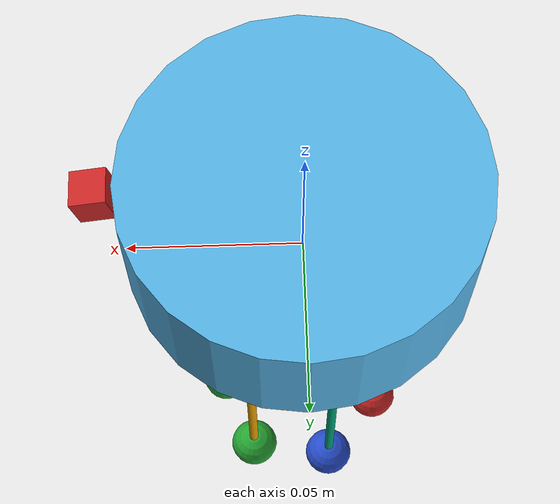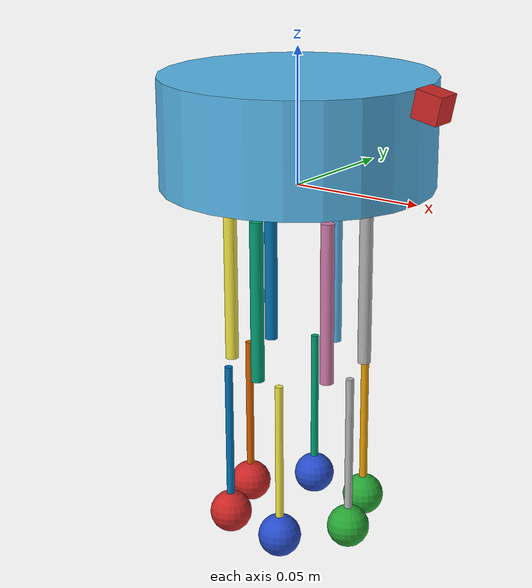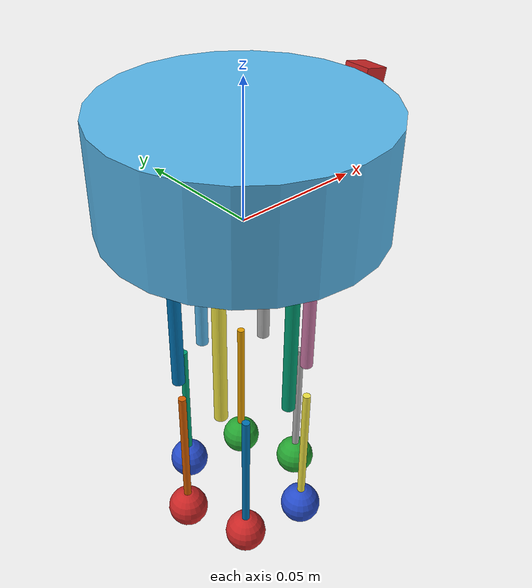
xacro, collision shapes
<?xml version="1.0"?>
<robot xmlns:xacro="http://www.ros.org/wiki/xacro" name="gurdy">

    <!-- Properties -->
    <xacro:property name="foot_kp" value="1000.0"/>
    <xacro:property name="foot_kd" value="1000.0"/>
    <xacro:property name="foot_mu1" value="10.0"/>
    <xacro:property name="foot_mu2" value="10.0"/>
    <xacro:property name="foot_radius" value="0.008"/>

    <xacro:property name="joint_effort" value="3.0"/>
    <!-- rad/s. 0.005 rad/s would need ~5 min for a 1.5 rad stroke. -->
    <xacro:property name="joint_velocity" value="5.0"/>
    <xacro:property name="joint_damping" value="0.2"/>
    <xacro:property name="joint_friction" value="0.01"/>

    <gazebo>
    <plugin name="ground_truth" filename="libgazebo_ros_p3d.so">
        <bodyName>base_link</bodyName>
        <topicName>/gurdy/odom</topicName>
        <frameName>world</frameName>
        <updateRate>10.0</updateRate>
    </plugin>
</gazebo>

    <!-- Head XACRO -->
    <xacro:macro name="gurdy_head" params="">
        <link name="base_link">
            <collision>
                <origin xyz="0 0 0" rpy="0 0 0"/>
                <geometry>
                    <box size="0.01 0.01 0.01"/>
                </geometry>
            </collision>
            <visual>
                <origin xyz="0 0 0.01" rpy="0 0 0"/>
                <geometry>
                    <box size="0.01 0.01 0.01"/>
                </geometry>
            </visual>
        </link>

        <link name="head_link">
            <inertial>
                <origin xyz="0 0 0.02" rpy="0 0 0"/>
                <mass value="0.3" />
                <inertia ixx="2.275e-04" ixy="0.0" ixz="0.0" iyy="2.275e-04" iyz="0.0" izz="3.75e-04"/>
            </inertial>
            <collision>
                <origin xyz="0 0 0.02" rpy="0 0 0"/>
                <geometry>
                    <cylinder radius="0.05" length="0.04"/>
                </geometry>
            </collision>
            <visual>
                <origin rpy="0.0 0 0" xyz="0 0 0"/>
                <geometry>
                    <mesh filename="package://my_gurdy_description/models/gurdy/meshes/gurdy_head_v2.dae"/>
                </geometry>
            </visual>
        </link>

        <gazebo reference="head_link">
            <mu1>10.0</mu1>
            <mu2>10.0</mu2>
        </gazebo>

        <joint name="fixed" type="fixed">
            <parent link="base_link"/>
            <child link="head_link"/>
        </joint>
    </xacro:macro>

    <!-- Camera XACRO -->
<xacro:macro name="gurdy_camera" params="">
    <link name="camera_link">
        <inertial>
            <origin xyz="0 0 0" rpy="0 0 0"/>
            <mass value="0.001" />
            <!-- Inflated for solver stability; see the inertia note at the top. -->
            <inertia ixx="1e-06" ixy="0.0" ixz="0.0" iyy="1e-06" iyz="0.0" izz="1e-06"/>
        </inertial>
        <collision>
            <origin xyz="0 0 0" rpy="0 0 0"/>
            <geometry>
                <box size="0.01 0.01 0.01"/>
            </geometry>
        </collision>
        <visual>
            <origin rpy="0.0 0 0" xyz="0 0 0"/>
            <geometry>
                <box size="0.01 0.01 0.01"/>
            </geometry>
        </visual>
    </link>

    <gazebo reference="camera_link">
        <material>Gazebo/Red</material>
    </gazebo>

    <xacro:property name="camera_tilt_rad" value="0.2094"/>
    <joint name="head_camera_joint" type="fixed">
        <parent link="head_link"/>
        <child link="camera_link"/>
        <origin xyz="0.055 0 0.035" rpy="0 ${camera_tilt_rad} 0"/>
    </joint>

    <gazebo reference="camera_link">
        <sensor type="camera" name="camera1">
            <update_rate>30.0</update_rate>
            <camera name="head">
                <horizontal_fov>1.3962634</horizontal_fov>
                <image>
                    <width>800</width>
                    <height>600</height>
                    <format>R8G8B8</format>
                </image>
                <clip>
                    <near>0.02</near>
                    <far>300</far>
                </clip>
                <noise>
                    <type>gaussian</type>
                    <mean>0.0</mean>
                    <stddev>0.007</stddev>
                </noise>
            </camera>
            <plugin name="camera_controller" filename="libgazebo_ros_camera.so">
                <alwaysOn>true</alwaysOn>
                <updateRate>0.0</updateRate>
                <cameraName>gurdy/camera</cameraName>
                <imageTopicName>image_raw</imageTopicName>
                <cameraInfoTopicName>camera_info</cameraInfoTopicName>
                <frameName>camera_link</frameName>
                <hackBaseline>0.07</hackBaseline>
                <distortionK1>0.0</distortionK1>
                <distortionK2>0.0</distortionK2>
                <distortionK3>0.0</distortionK3>
                <distortionT1>0.0</distortionT1>
                <distortionT2>0.0</distortionT2>
            </plugin>
        </sensor>
    </gazebo>
</xacro:macro>

<!-- Add bumper sensor to the head -->
<gazebo reference="head">
  <sensor name="head_bumper" type="contact">
    <always_on>true</always_on>
    <update_rate>10.0</update_rate>
    <contact>
      <collision>head_collision</collision>
    </contact>
    <plugin name="gazebo_ros_bumper_controller" filename="libgazebo_ros_bumper.so">
      <alwaysOn>true</alwaysOn>
      <updateRate>10.0</updateRate>
      <bumperTopicName>head_bumper</bumperTopicName>
      <frameName>head</frameName>
    </plugin>
  </sensor>
</gazebo>

    <!-- LEG -->
    <!-- MACROS -->
    <xacro:macro name="upperleg_link" params="number">
        <link name="upperleg_M${number}_link">
            <inertial>
                <origin xyz="0 0 0.03" rpy="0 0 0"/>
                <mass value="0.03" />
                <!-- Inflated for solver stability; see the inertia note at the top. -->
                <inertia ixx="1e-05" ixy="0.0" ixz="0.0" iyy="1e-05" iyz="0.0" izz="1e-06"/>
            </inertial>
            <collision>
                <origin xyz="0 0 0.03" rpy="0 0 0"/>
                <geometry>
                    <cylinder length="0.06" radius="0.0025"/>
                </geometry>
            </collision>
            <visual>
                <origin rpy="0.0 0 0" xyz="0 0 0"/>
                <geometry>
                    <mesh filename="package://my_gurdy_description/models/gurdy/meshes/gurdy_higherleg_v2.dae"/>
                </geometry>
            </visual>
        </link>
    </xacro:macro>

    <xacro:macro name="lowerleg_link" params="number">
        <link name="lowerleg_M${number}_link">
            <inertial>
                <origin xyz="0 0 0.03" rpy="0 0 0"/>
                <mass value="0.03" />
                <!-- Inflated for solver stability; see the inertia note at the top. -->
                <inertia ixx="1e-05" ixy="0.0" ixz="0.0" iyy="1e-05" iyz="0.0" izz="1e-06"/>
            </inertial>
            <collision>
                <origin xyz="0 0 0.03" rpy="0 0 0"/>
                <geometry>
                    <cylinder length="0.06" radius="0.0015"/>
                </geometry>
            </collision>
            <visual>
                <origin rpy="0.0 0 0" xyz="0 0 0"/>
                <geometry>
                    <mesh filename="package://my_gurdy_description/models/gurdy/meshes/gurdy_lowerleg_v2.dae"/>
                </geometry>
            </visual>
        </link>
        <joint name="upperlegM${number}_lowerlegM${number}_joint" type="revolute">
            <parent link="upperleg_M${number}_link"/>
            <child link="lowerleg_M${number}_link"/>
            <origin xyz="0 0.0095 0.06" rpy="0 0 3.14159"/>
            <limit lower="-2.9" upper="0.0" effort="${joint_effort}" velocity="${joint_velocity}"/>
            <dynamics damping="${joint_damping}" friction="${joint_friction}"/>
            <axis xyz="0 1 0"/>
        </joint>
        <!-- Implicit damping, so joint_damping stays stable; see its note. -->
        <gazebo reference="upperlegM${number}_lowerlegM${number}_joint">
            <implicitSpringDamper>true</implicitSpringDamper>
        </gazebo>
    </xacro:macro>

    <xacro:macro name="foot_link" params="number colour">
        <link name="footM${number}_link">
            <inertial>
                <origin xyz="0 0 0" rpy="0 0 0"/>
                <mass value="0.01" />
                <!-- Inflated for solver stability; see the inertia note at the top. -->
                <inertia ixx="1e-06" ixy="0.0" ixz="0.0" iyy="1e-06" iyz="0.0" izz="1e-06"/>
            </inertial>
            <collision>
                <origin xyz="0 0 0" rpy="0 0 0"/>
                <geometry>
                    <sphere radius="${foot_radius}"/>
                </geometry>
            </collision>
            <visual>
                <origin rpy="0.0 0 0" xyz="0 0 0"/>
                <geometry>
                    <sphere radius="${foot_radius}"/>
                </geometry>
            </visual>
        </link>
        <gazebo reference="footM${number}_link">
            <kp>${foot_kp}</kp>
            <kd>${foot_kd}</kd>
            <mu1>${foot_mu1}</mu1>
            <mu2>${foot_mu2}</mu2>
            <material>Gazebo/${colour}</material>
        </gazebo>
        <joint name="basefoot_peg_M${number}_basefoot_peg_M${number}_joint_joint" type="fixed">
            <parent link="lowerleg_M${number}_link"/>
            <child link="footM${number}_link"/>
            <origin xyz="0 0 0.06" rpy="0 0 0"/>
        </joint>
    </xacro:macro>

    <xacro:macro name="upper_transmission" params="number">
        <transmission name="tran_upper_M${number}">
            <type>transmission_interface/SimpleTransmission</type>
            <joint name="head_upperlegM${number}_joint">
                <hardwareInterface>EffortJointInterface</hardwareInterface>
            </joint>
            <actuator name="motor_upper_M${number}">
                <hardwareInterface>EffortJointInterface</hardwareInterface>
                <mechanicalReduction>1</mechanicalReduction>
            </actuator>
        </transmission>
    </xacro:macro>

    <xacro:macro name="lower_transmission" params="number">
        <transmission name="tran_lower_M${number}">
            <type>transmission_interface/SimpleTransmission</type>
            <joint name="upperlegM${number}_lowerlegM${number}_joint">
                <hardwareInterface>EffortJointInterface</hardwareInterface>
            </joint>
            <actuator name="motor_lower_M${number}">
                <hardwareInterface>EffortJointInterface</hardwareInterface>
                <mechanicalReduction>1</mechanicalReduction>
            </actuator>
        </transmission>
    </xacro:macro>

    <xacro:macro name="gurdy_leg" params="headlink_name number colour *origin">
        <xacro:upperleg_link number="${number}"/>
        <xacro:upper_transmission number="${number}"/>

        <joint name="head_upperlegM${number}_joint" type="revolute">
            <parent link="${headlink_name}"/>
            <child link="upperleg_M${number}_link"/>
            <xacro:insert_block name="origin" />
            <limit lower="-1.55" upper="0.0" effort="${joint_effort}" velocity="${joint_velocity}"/>
            <dynamics damping="${joint_damping}" friction="${joint_friction}"/>
            <axis xyz="0 1 0"/>
        </joint>
        <!-- Implicit damping, so joint_damping stays stable; see its note. -->
        <gazebo reference="head_upperlegM${number}_joint">
            <implicitSpringDamper>true</implicitSpringDamper>
        </gazebo>

        <xacro:lowerleg_link number="${number}"/>
        <xacro:lower_transmission number="${number}"/>

        <xacro:foot_link number="${number}" colour="${colour}"/>
    </xacro:macro>

    <xacro:macro name="gurdy_control" params="namespace">
        <gazebo>
            <plugin name="gazebo_ros_control" filename="libgazebo_ros_control.so">
                <robotNamespace>/${namespace}</robotNamespace>
            </plugin>
        </gazebo>

        <gazebo>
            <plugin name="gazebo_ros_imu_controller" filename="libgazebo_ros_imu.so">
                <robotNamespace>/${namespace}</robotNamespace>
                <topicName>imu/data</topicName>
                <serviceName>imu/service</serviceName>
                <bodyName>base_link</bodyName>
                <gaussianNoise>0</gaussianNoise>
                <rpyOffsets>0 0 0</rpyOffsets>
                <updateRate>5.0</updateRate>
                <alwaysOn>true</alwaysOn>
                <gaussianNoise>0</gaussianNoise>
            </plugin>
        </gazebo>

    </xacro:macro>

    <!-- Instantiate all components -->
    <xacro:gurdy_head/>
    <xacro:gurdy_camera/>

    <xacro:gurdy_leg headlink_name="head_link" number="1" colour="Red">
        <origin xyz="-0.02165 -0.0125 -0.008" rpy="3.14159 0 0.523599"/>
    </xacro:gurdy_leg>

    <xacro:gurdy_leg headlink_name="head_link" number="2" colour="Green">
        <origin xyz="0.02165 -0.0125 -0.008" rpy="3.14159 0 2.61799"/>
    </xacro:gurdy_leg>

    <xacro:gurdy_leg headlink_name="head_link" number="3" colour="Blue">
        <origin xyz="0 0.025 -0.008" rpy="3.14159 0 -1.5708"/>
    </xacro:gurdy_leg>

    <xacro:gurdy_leg headlink_name="head_link" number="4" colour="Red">
        <origin xyz="-0.02165 0.0125 -0.008" rpy="3.14159 0 -0.523599"/>
    </xacro:gurdy_leg>

    <xacro:gurdy_leg headlink_name="head_link" number="5" colour="Green">
        <origin xyz="0.02165 0.0125 -0.008" rpy="3.14159 0 -2.61799"/>
    </xacro:gurdy_leg>
   <xacro:gurdy_leg headlink_name="head_link" number="6" colour="Blue">
        <origin xyz="0 -0.025 -0.008" rpy="3.14159 0 1.5708"/>
    </xacro:gurdy_leg>

    <xacro:gurdy_control namespace="gurdy"/>

</robot>
